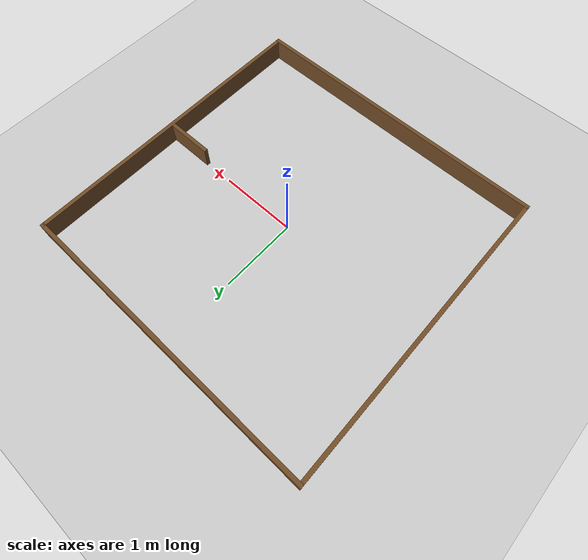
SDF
<?xml version="1.0" ?>
<sdf version="1.8">
  <world name="square4m_wall_ign">

    <physics name="default_physics" type="ode">
      <max_step_size>0.005</max_step_size>
      <real_time_factor>1.0</real_time_factor>
      <real_time_update_rate>200</real_time_update_rate>
    </physics>

    <!-- Core Ignition systems (Fortress / Gazebo6) -->
    <plugin filename="libignition-gazebo6-physics-system.so"
            name="ignition::gazebo::systems::Physics"/>

    <plugin filename="libignition-gazebo6-user-commands-system.so"
            name="ignition::gazebo::systems::UserCommands"/>

    <plugin filename="libignition-gazebo6-scene-broadcaster-system.so"
            name="ignition::gazebo::systems::SceneBroadcaster"/>

    <plugin filename="libignition-gazebo6-sensors-system.so"
            name="ignition::gazebo::systems::Sensors">
      <render_engine>ogre2</render_engine>
    </plugin>

    <!-- Scene configuration -->
    <scene>
      <ambient>0.6 0.6 0.6 1</ambient>
      <background>0.8 0.8 0.8 1</background>
      <shadows>false</shadows>
      <grid>true</grid>
    </scene>

    <!-- Sun light -->
    <light type="directional" name="sun">
      <cast_shadows>false</cast_shadows>
      <pose>0 0 10 0 0 0</pose>
      <diffuse>0.8 0.8 0.8 1</diffuse>
      <specular>0.2 0.2 0.2 1</specular>
      <direction>-0.5 0.1 -0.9</direction>
    </light>

    <!-- Ground plane -->
    <model name="ground_plane">
      <static>true</static>
      <link name="link">
        <collision name="collision">
          <geometry>
            <plane>
              <normal>0 0 1</normal>
              <size>20 20</size>
            </plane>
          </geometry>
        </collision>

        <visual name="visual">
          <geometry>
            <plane>
              <normal>0 0 1</normal>
              <size>20 20</size>
            </plane>
          </geometry>
          <material>
            <ambient>0.8 0.8 0.8 1</ambient>
            <diffuse>0.8 0.8 0.8 1</diffuse>
            <specular>0.1 0.1 0.1 1</specular>
          </material>
        </visual>
      </link>
    </model>

    <!-- Gazebo Fortress GUI -->
    <gui fullscreen="0">
      <plugin filename="MinimalScene" name="3D View">
        <gz-gui>
          <title>3D View</title>
          <property type="bool" key="showTitleBar">false</property>
          <property type="string" key="state">docked</property>
        </gz-gui>
        <engine>ogre2</engine>
        <scene>scene</scene>
        <camera_pose>0 0 2.5 0 1.5708 0</camera_pose>
      </plugin>

      <plugin filename="GzSceneManager" name="Scene Manager">
        <gz-gui>
          <property key="resizable" type="bool">false</property>
          <property key="width" type="double">1</property>
          <property key="height" type="double">1</property>
          <property key="state" type="string">floating</property>
          <property key="showTitleBar" type="bool">false</property>
        </gz-gui>
      </plugin>

      <plugin filename="InteractiveViewControl" name="Interactive view control">
        <gz-gui>
          <property key="resizable" type="bool">false</property>
          <property key="width" type="double">1</property>
          <property key="height" type="double">1</property>
          <property key="state" type="string">floating</property>
          <property key="showTitleBar" type="bool">false</property>
        </gz-gui>
      </plugin>

      <plugin filename="EntityContextMenuPlugin" name="Entity context menu">
        <gz-gui>
          <property key="resizable" type="bool">false</property>
          <property key="width" type="double">1</property>
          <property key="height" type="double">1</property>
          <property key="state" type="string">floating</property>
          <property key="showTitleBar" type="bool">false</property>
        </gz-gui>
      </plugin>

      <plugin filename="CameraTracking" name="Camera Tracking">
        <gz-gui>
          <property key="width" type="double">1</property>
          <property key="height" type="double">1</property>
          <property key="state" type="string">floating</property>
          <property key="showTitleBar" type="bool">false</property>
        </gz-gui>
      </plugin>

      <plugin filename="ComponentInspector" name="Component inspector"/>
      <plugin filename="EntityTree" name="Entity tree"/>
    </gui>

    <!-- Square 4 m boundary, centred at the world origin -->
    <include>
      <uri>model://square4m</uri>
      <name>square4m_boundary</name>
      <pose>0 0 0 0 0 0</pose>
    </include>

    <include>
      <uri>model://wall60cm</uri>
      <name>wall60_inward</name>
      <pose>1.675 0 0.15 0 0 0</pose>
    </include>

  </world>
</sdf>

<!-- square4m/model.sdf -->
<sdf version='1.7'>
  <model name='square4m'>
    <pose>0 0 0 0 -0 0</pose>
    <link name='Wall_10'>
      <collision name='Wall_10_Collision'>
        <geometry>
          <box>
            <size>4.05 0.05 0.3</size>
          </box>
        </geometry>
        <pose>0 0 0.15 0 -0 0</pose>
      </collision>
      <visual name='Wall_10_Visual'>
        <pose>0 0 0.15 0 -0 0</pose>
        <geometry>
          <box>
            <size>4.05 0.05 0.3</size>
          </box>
        </geometry>
        <material>
          <ambient>0.45 0.30 0.15 1</ambient>
          <diffuse>0.45 0.30 0.15 1</diffuse>
          <specular>0.05 0.05 0.05 1</specular>
        </material>
        <meta>
          <layer>0</layer>
        </meta>
      </visual>
      <pose>0 2 0 0 -0 0</pose>
    </link>
    <link name='Wall_12'>
      <collision name='Wall_12_Collision'>
        <geometry>
          <box>
            <size>4.05 0.05 0.3</size>
          </box>
        </geometry>
        <pose>0 0 0.15 0 -0 0</pose>
      </collision>
      <visual name='Wall_12_Visual'>
        <pose>0 0 0.15 0 -0 0</pose>
        <geometry>
          <box>
            <size>4.05 0.05 0.3</size>
          </box>
        </geometry>
        <material>
          <ambient>0.45 0.30 0.15 1</ambient>
          <diffuse>0.45 0.30 0.15 1</diffuse>
          <specular>0.05 0.05 0.05 1</specular>
        </material>
        <meta>
          <layer>0</layer>
        </meta>
      </visual>
      <pose>2 0 0 0 -0 -1.5708</pose>
    </link>
    <link name='Wall_14'>
      <collision name='Wall_14_Collision'>
        <geometry>
          <box>
            <size>4.05 0.05 0.3</size>
          </box>
        </geometry>
        <pose>0 0 0.15 0 -0 0</pose>
      </collision>
      <visual name='Wall_14_Visual'>
        <pose>0 0 0.15 0 -0 0</pose>
        <geometry>
          <box>
            <size>4.05 0.05 0.3</size>
          </box>
        </geometry>
        <material>
          <ambient>0.45 0.30 0.15 1</ambient>
          <diffuse>0.45 0.30 0.15 1</diffuse>
          <specular>0.05 0.05 0.05 1</specular>
        </material>
        <meta>
          <layer>0</layer>
        </meta>
      </visual>
      <pose>0 -2 0 0 -0 3.14159</pose>
    </link>
    <link name='Wall_8'>
      <collision name='Wall_8_Collision'>
        <geometry>
          <box>
            <size>4.05 0.05 0.3</size>
          </box>
        </geometry>
        <pose>0 0 0.15 0 -0 0</pose>
      </collision>
      <visual name='Wall_8_Visual'>
        <pose>0 0 0.15 0 -0 0</pose>
        <geometry>
          <box>
            <size>4.05 0.05 0.3</size>
          </box>
        </geometry>
        <material>
          <ambient>0.45 0.30 0.15 1</ambient>
          <diffuse>0.45 0.30 0.15 1</diffuse>
          <specular>0.05 0.05 0.05 1</specular>
        </material>
        <meta>
          <layer>0</layer>
        </meta>
      </visual>
      <pose>-2 0 0 0 -0 -1.5708</pose>
    </link>
    <static>1</static>
  </model>
</sdf>

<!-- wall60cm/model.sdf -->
<sdf version="1.7">
  <model name="wall60cm">
    <static>true</static>
    <pose>0 0 0 0 0 0</pose>

    <link name="link">
      <collision name="collision">
        <geometry><box><size>0.6 0.05 0.3</size></box></geometry>
      </collision>

      <visual name="visual">
        <geometry><box><size>0.6 0.05 0.3</size></box></geometry>
        <material>
          <ambient>0.45 0.30 0.15 1</ambient>
          <diffuse>0.45 0.30 0.15 1</diffuse>
          <specular>0.05 0.05 0.05 1</specular>
        </material>
      </visual>
    </link>
  </model>
</sdf>
